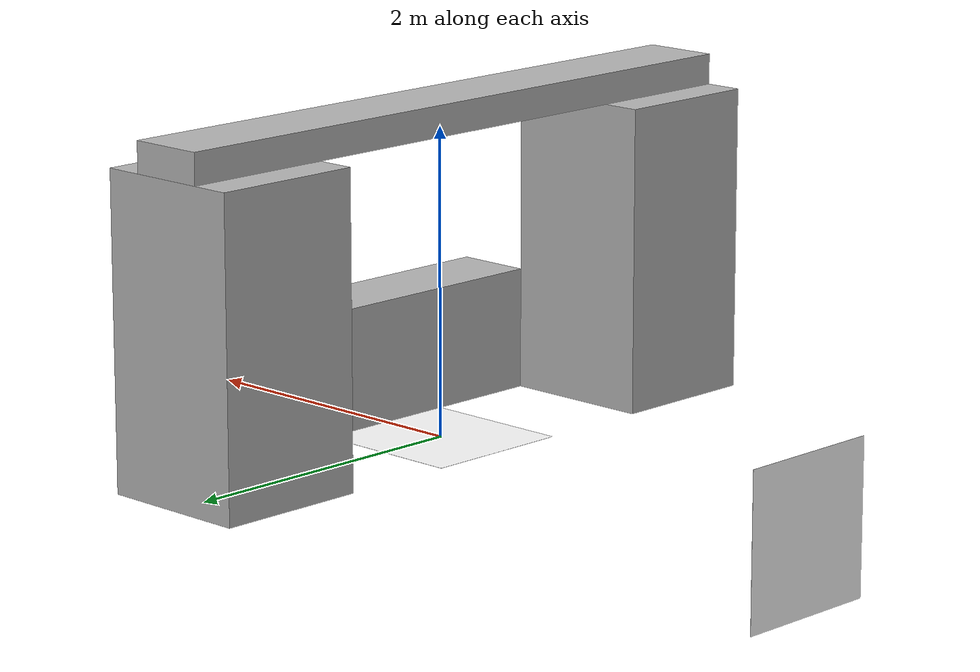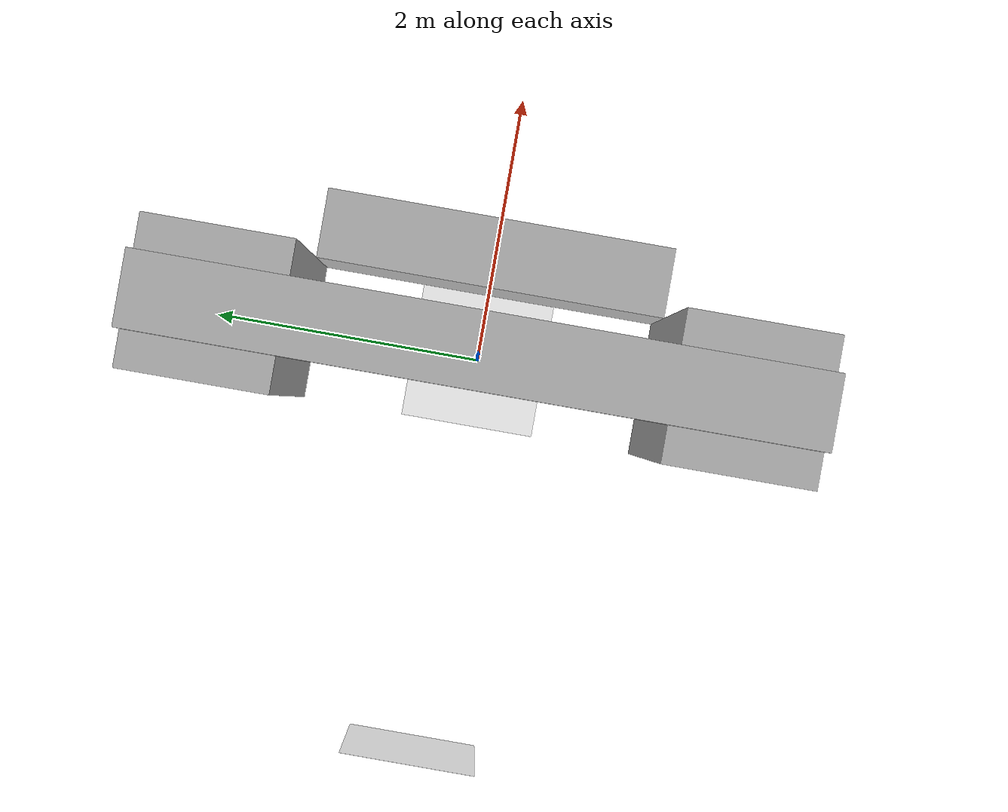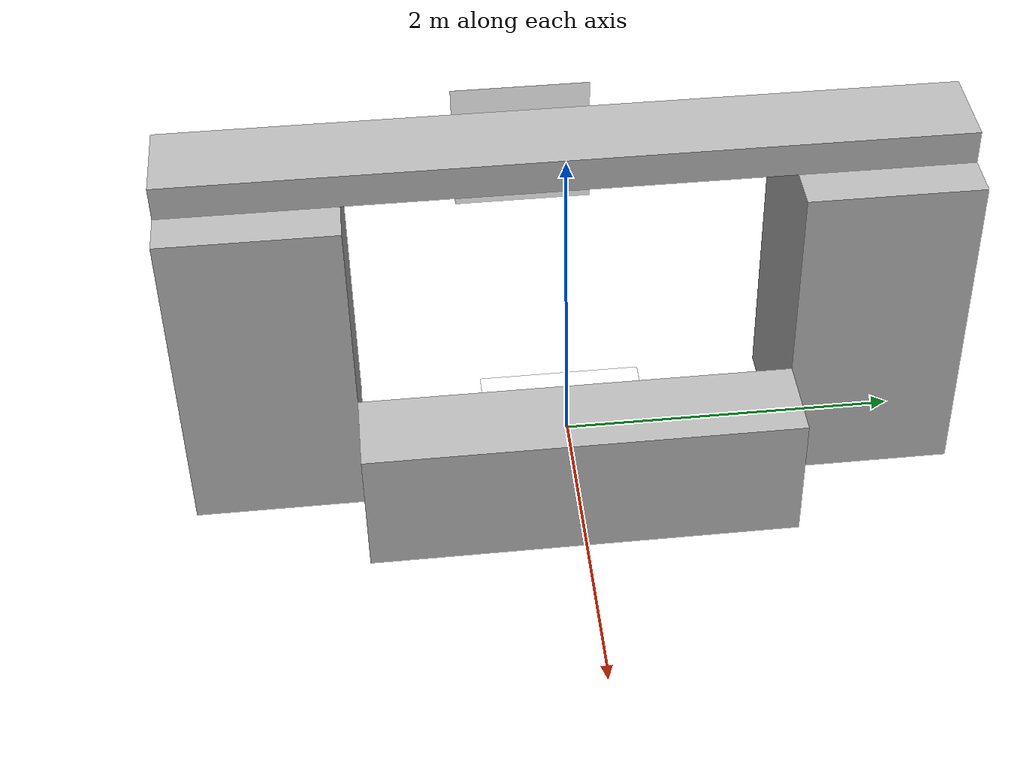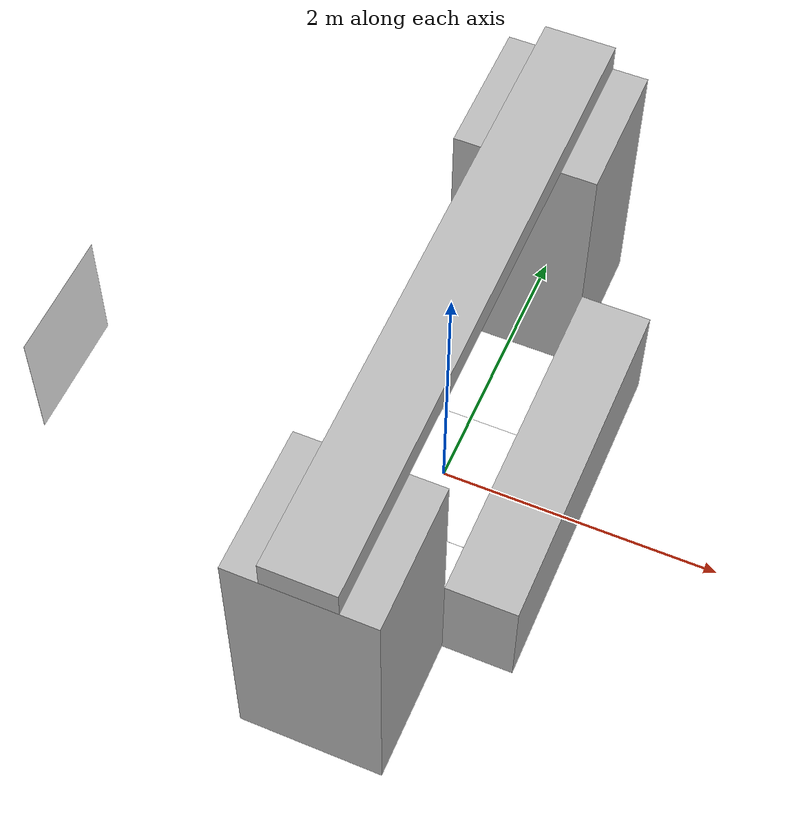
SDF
<?xml version="1.0" ?>
<sdf version="1.6">
  <world name="scene">
    <model name="floor">
      <static>1</static>
      <link name="floor_world_link"/>
      <link name="floor_link">
        <pose>0 0 0 0 0 0</pose>
        <gravity>0</gravity>
        <visual name="floor_visual">
          <geometry>
            <plane>
              <normal>0 0 1</normal>
              <size>1 1</size>
            </plane>
          </geometry>
          <material>
            <ambient>1 1 1 2.21</ambient>
          </material>
        </visual>
        <collision name="floor_col">
          <geometry>
            <plane>
              <normal>0 0 1</normal>
              <size>100 100</size>
            </plane>
          </geometry>
        </collision>
      </link>
      <joint name="floor_base" type="fixed">
        <parent>floor_world_link</parent>
        <child>floor_link</child>
      </joint>
    </model>
    <model name="backplate">
      <static>1</static>
      <link name="backplate_world_link"/>
      <link name="backplate_link">
        <pose>-3 0 0 0 0 0</pose>
        <gravity>0</gravity>
        <visual name="backplate_visual">
          <geometry>
            <plane>
              <normal>1 0 0</normal>
              <size>1 1</size>
            </plane>
          </geometry>
          <material>
            <ambient>1 1 1 2.21</ambient>
          </material>
        </visual>
        <collision name="backplate_col">
          <geometry>
            <plane>
              <normal>1 0 0</normal>
              <size>100 100</size>
            </plane>
          </geometry>
        </collision>
      </link>
      <joint name="backplate_base" type="fixed">
        <parent>backplate_world_link</parent>
        <child>backplate_link</child>
      </joint>
    </model>
    <model name="lowbox">
      <static>1</static>
      <link name="lowbox_world_link"/>
      <link name="lowbox_link">
	<pose>0.75 0.0 0.4 0 0 0</pose>
	<gravity>0</gravity>
	<visual name="lowbox_visual">
	  <geometry>
	    <box>
	      <size>0.5 2.5 0.8</size>
	    </box>
	  </geometry>
	</visual>
	<collision name="lowbox_col">
	  <geometry>
	    <box>
	      <size>0.5 2.5 0.8</size>
	    </box>
	  </geometry>
	</collision>
      </link>
      <joint name="lowbox_base" type="fixed">
	<parent>lowbox_world_link</parent>
	<child>lowbox_link</child>
      </joint>
    </model>
    <model name="highbox_left">
      <static>1</static>
      <link name="highbox_left_world_link"/>
      <link name="highbox_left_link">
	<pose>0.0 1.75 1.0 0 0 0</pose>
	<gravity>0</gravity>
	<visual name="highbox_left_visual">
	  <geometry>
	    <box>
	      <size>1 1 2</size>
	    </box>
	  </geometry>
	</visual>
	<collision name="highbox_left_col">
	  <geometry>
	    <box>
	      <size>1 1 2</size>
	    </box>
	  </geometry>
	</collision>
      </link>
      <joint name="highbox_left_base" type="fixed">
	<parent>highbox_left_world_link</parent>
	<child>highbox_left_link</child>
      </joint>
    </model>
    <model name="highbox_right">
      <static>1</static>
      <link name="highbox_right_world_link"/>
      <link name="highbox_right_link">
	<pose>0.0 -1.75 1.0 0 0 0</pose>
	<gravity>0</gravity>
	<visual name="highbox_right_visual">
	  <geometry>
	    <box>
	      <size>1 1 2</size>
	    </box>
	  </geometry>
	</visual>
	<collision name="highbox_right_col">
	  <geometry>
	    <box>
	      <size>1 1 2</size>
	    </box>
	  </geometry>
	</collision>
      </link>
      <joint name="highbox_right_base" type="fixed">
	<parent>highbox_right_world_link</parent>
	<child>highbox_right_link</child>
      </joint>
    </model>
    <model name="bar">
      <static>1</static>
      <link name="bar_world_link"/>
      <link name="bar_link">
	<pose>0.0 0.0 2.1 0 0 0</pose>
	<gravity>0</gravity>
	<visual name="bar_visual">
	  <geometry>
	    <box>
	      <size>0.5 4.5 0.2</size>
	    </box>
	  </geometry>
	</visual>
	<collision name="bar_col">
	  <geometry>
	    <box>
	      <size>0.5 4.5 0.2</size>
	    </box>
	  </geometry>
	</collision>
      </link>
      <joint name="bar_base" type="fixed">
	<parent>bar_world_link</parent>
	<child>bar_link</child>
      </joint>
    </model>
  </world>
</sdf>
